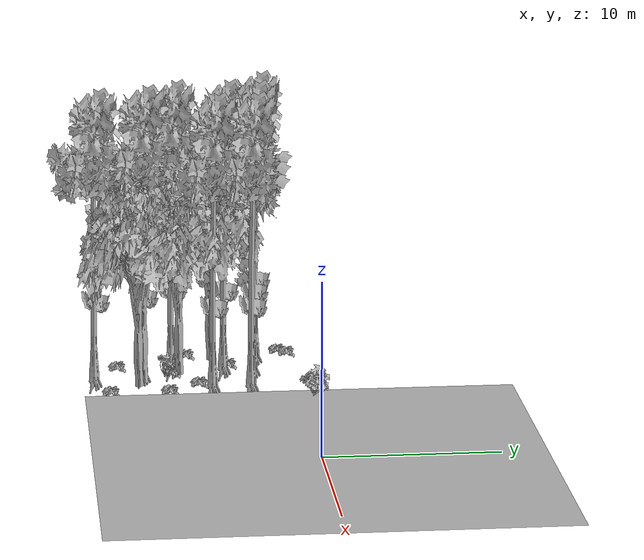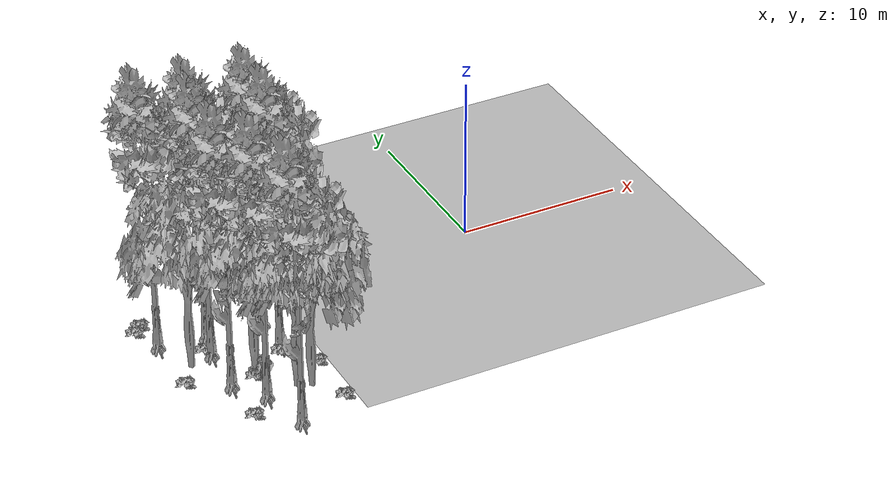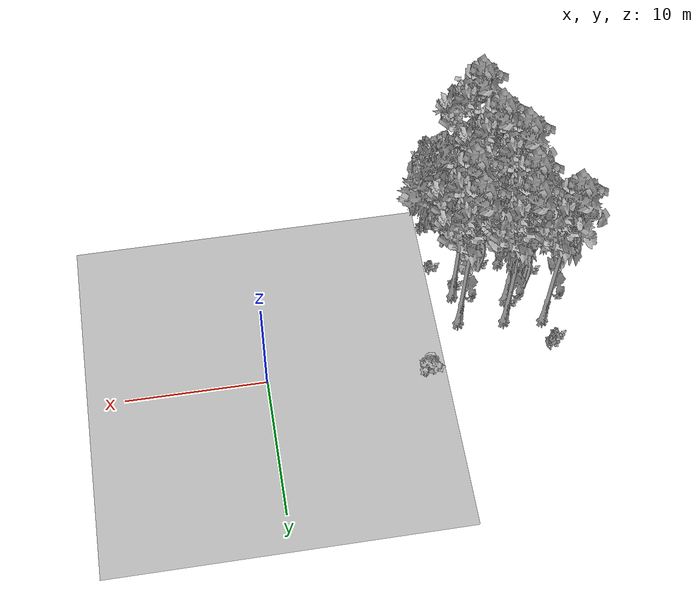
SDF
<sdf version="1.7">
 <world name="default">
  <model name="ground_plane">
   <static>1</static>
   <link name="link">
    <collision name="collision">
     <pose>-50 0 0 0 -0 0</pose>
     <geometry><plane><normal>0 0 1</normal><size>80 80</size></plane></geometry>
     <surface><contact><ode><min_depth>0.01</min_depth><max_vel>0</max_vel></ode></contact></surface>
    </collision>
    <visual name="grass">
     <cast_shadows>0</cast_shadows>
     <geometry>
      <mesh>
       <scale>0.46714285714285714 0.46714285714285714 0.1</scale>
       <uri>file://grass_plane/meshes/grass_plane.dae</uri>
      </mesh>
     </geometry>
    </visual>
   </link>
  </model>
  <model name="Tree 1">
   <static>1</static>
   <pose>-14.268420945148922 -5.010399066711486 0 1.57079 -0 0</pose>
   <link name="link">
    <collision name="collision">
     <geometry><mesh><scale>3.5 5 3.5</scale><uri>model://tree_9/meshes/tree_9.obj</uri></mesh></geometry>
    </collision>
    <visual name="visual">
     <geometry><mesh><scale>3.5 5 3.5</scale><uri>model://tree_9/meshes/tree_9.obj</uri></mesh></geometry>
    </visual>
   </link>
  </model>
  <model name="Tree 3">
   <static>1</static>
   <pose>-15.185637563876192 -9.049775119217855 0 1.57079 -0 0</pose>
   <link name="link">
    <collision name="collision">
     <geometry><mesh><scale>3.5 5 3.5</scale><uri>model://tree_2/meshes/tree_2.obj</uri></mesh></geometry>
    </collision>
    <visual name="visual">
     <geometry><mesh><scale>3.5 5 3.5</scale><uri>model://tree_2/meshes/tree_2.obj</uri></mesh></geometry>
    </visual>
   </link>
  </model>
  <model name="Tree 49">
   <static>1</static>
   <pose>-14.444090722086116 -9.37001705787462 0 1.57079 -0 0</pose>
   <link name="link">
    <collision name="collision">
     <geometry><mesh><scale>3.5 5 3.5</scale><uri>model://tree_2/meshes/tree_2.obj</uri></mesh></geometry>
    </collision>
    <visual name="visual">
     <geometry><mesh><scale>3.5 5 3.5</scale><uri>model://tree_2/meshes/tree_2.obj</uri></mesh></geometry>
    </visual>
   </link>
  </model>
  <model name="Tree 72">
   <static>1</static>
   <pose>-16.677209155015053 -6.855299618542155 0 1.57079 -0 0</pose>
   <link name="link">
    <collision name="collision">
     <geometry><mesh><scale>3.5 5 3.5</scale><uri>model://tree_2/meshes/tree_2.obj</uri></mesh></geometry>
    </collision>
    <visual name="visual">
     <geometry><mesh><scale>3.5 5 3.5</scale><uri>model://tree_2/meshes/tree_2.obj</uri></mesh></geometry>
    </visual>
   </link>
  </model>
  <model name="Tree 396">
   <static>1</static>
   <pose>-18.0080487579403 -4.1199985908794545 0 1.57079 -0 0</pose>
   <link name="link">
    <collision name="collision">
     <geometry><mesh><scale>3.5 5 3.5</scale><uri>model://tree_9/meshes/tree_9.obj</uri></mesh></geometry>
    </collision>
    <visual name="visual">
     <geometry><mesh><scale>3.5 5 3.5</scale><uri>model://tree_9/meshes/tree_9.obj</uri></mesh></geometry>
    </visual>
   </link>
  </model>
  <model name="Tree 417">
   <static>1</static>
   <pose>-16.88983637036467 -9.007692633671809 0 1.57079 -0 0</pose>
   <link name="link">
    <collision name="collision">
     <geometry><mesh><scale>3.5 5 3.5</scale><uri>model://tree_9/meshes/tree_9.obj</uri></mesh></geometry>
    </collision>
    <visual name="visual">
     <geometry><mesh><scale>3.5 5 3.5</scale><uri>model://tree_9/meshes/tree_9.obj</uri></mesh></geometry>
    </visual>
   </link>
  </model>
  <model name="Tree 518">
   <static>1</static>
   <pose>-14.27069926521752 -2.7329768493140776 0 1.57079 -0 0</pose>
   <link name="link">
    <collision name="collision">
     <geometry><mesh><scale>3.5 5 3.5</scale><uri>model://tree_9/meshes/tree_9.obj</uri></mesh></geometry>
    </collision>
    <visual name="visual">
     <geometry><mesh><scale>3.5 5 3.5</scale><uri>model://tree_9/meshes/tree_9.obj</uri></mesh></geometry>
    </visual>
   </link>
  </model>
  <model name="Tree 522">
   <static>1</static>
   <pose>-20.326247522328813 -2.0359272576360254 0 1.57079 -0 0</pose>
   <link name="link">
    <collision name="collision">
     <geometry><mesh><scale>3.5 5 3.5</scale><uri>model://tree_9/meshes/tree_9.obj</uri></mesh></geometry>
    </collision>
    <visual name="visual">
     <geometry><mesh><scale>3.5 5 3.5</scale><uri>model://tree_9/meshes/tree_9.obj</uri></mesh></geometry>
    </visual>
   </link>
  </model>
  <model name="Tree 543">
   <static>1</static>
   <pose>-19.579495202905438 -4.8119461704391995 0 1.57079 -0 0</pose>
   <link name="link">
    <collision name="collision">
     <geometry><mesh><scale>3.5 5 3.5</scale><uri>model://tree_2/meshes/tree_2.obj</uri></mesh></geometry>
    </collision>
    <visual name="visual">
     <geometry><mesh><scale>3.5 5 3.5</scale><uri>model://tree_2/meshes/tree_2.obj</uri></mesh></geometry>
    </visual>
   </link>
  </model>
  <model name="Tree 558">
   <static>1</static>
   <pose>-16.172193359262216 -11.927449991987125 0 1.57079 -0 0</pose>
   <link name="link">
    <collision name="collision">
     <geometry><mesh><scale>3.5 5 3.5</scale><uri>model://tree_9/meshes/tree_9.obj</uri></mesh></geometry>
    </collision>
    <visual name="visual">
     <geometry><mesh><scale>3.5 5 3.5</scale><uri>model://tree_9/meshes/tree_9.obj</uri></mesh></geometry>
    </visual>
   </link>
  </model>
  <model name="Tree 578">
   <static>1</static>
   <pose>-18.191517368507903 -7.249919098094665 0 1.57079 -0 0</pose>
   <link name="link">
    <collision name="collision">
     <geometry><mesh><scale>3.5 5 3.5</scale><uri>model://tree_9/meshes/tree_9.obj</uri></mesh></geometry>
    </collision>
    <visual name="visual">
     <geometry><mesh><scale>3.5 5 3.5</scale><uri>model://tree_9/meshes/tree_9.obj</uri></mesh></geometry>
    </visual>
   </link>
  </model>
  <model name="Tree 614">
   <static>1</static>
   <pose>-17.56637057550029 -2.371759540494068 0 1.57079 -0 0</pose>
   <link name="link">
    <collision name="collision">
     <geometry><mesh><scale>3.5 5 3.5</scale><uri>model://tree_9/meshes/tree_9.obj</uri></mesh></geometry>
    </collision>
    <visual name="visual">
     <geometry><mesh><scale>3.5 5 3.5</scale><uri>model://tree_9/meshes/tree_9.obj</uri></mesh></geometry>
    </visual>
   </link>
  </model>
  <model name="Bush 187">
   <static>1</static>
   <pose>-13.194455139986992 -7.6143491781825645 0 1.57079 -0 0</pose>
   <link name="link">
    <collision name="collision">
     <geometry><mesh><scale>2 2 2</scale><uri>model://bush_2/meshes/bush_2.obj</uri></mesh></geometry>
     <surface><contact><collide_without_contact>false</collide_without_contact></contact></surface>
    </collision>
    <visual name="visual">
     <geometry><mesh><scale>2 2 2</scale><uri>model://bush_2/meshes/bush_2.obj</uri></mesh></geometry>
    </visual>
   </link>
  </model>
  <model name="Bush 257">
   <static>1</static>
   <pose>-18.287650795860248 -10.506203330436588 0 1.57079 -0 0</pose>
   <link name="link">
    <collision name="collision">
     <geometry><mesh><scale>2 2 2</scale><uri>model://bush_2/meshes/bush_2.obj</uri></mesh></geometry>
     <surface><contact><collide_without_contact>false</collide_without_contact></contact></surface>
    </collision>
    <visual name="visual">
     <geometry><mesh><scale>2 2 2</scale><uri>model://bush_2/meshes/bush_2.obj</uri></mesh></geometry>
    </visual>
   </link>
  </model>
  <model name="Bush 315">
   <static>1</static>
   <pose>-16.507536464240985 -7.638157019108917 0 1.57079 -0 0</pose>
   <link name="link">
    <collision name="collision">
     <geometry><mesh><scale>2 2 2</scale><uri>model://bush_4/meshes/bush_4.obj</uri></mesh></geometry>
     <surface><contact><collide_without_contact>false</collide_without_contact></contact></surface>
    </collision>
    <visual name="visual">
     <geometry><mesh><scale>2 2 2</scale><uri>model://bush_4/meshes/bush_4.obj</uri></mesh></geometry>
    </visual>
   </link>
  </model>
  <model name="Bush 342">
   <static>1</static>
   <pose>-14.612381445301402 -5.806014649960993 0 1.57079 -0 0</pose>
   <link name="link">
    <collision name="collision">
     <geometry><mesh><scale>2 2 2</scale><uri>model://bush_2/meshes/bush_2.obj</uri></mesh></geometry>
     <surface><contact><collide_without_contact>false</collide_without_contact></contact></surface>
    </collision>
    <visual name="visual">
     <geometry><mesh><scale>2 2 2</scale><uri>model://bush_2/meshes/bush_2.obj</uri></mesh></geometry>
    </visual>
   </link>
  </model>
  <model name="Bush 353">
   <static>1</static>
   <pose>-11.492187234279616 0.7125211329506982 0 1.57079 -0 0</pose>
   <link name="link">
    <collision name="collision">
     <geometry><mesh><scale>2 2 2</scale><uri>model://bush_1/meshes/bush_1.obj</uri></mesh></geometry>
     <surface><contact><collide_without_contact>false</collide_without_contact></contact></surface>
    </collision>
    <visual name="visual">
     <geometry><mesh><scale>2 2 2</scale><uri>model://bush_1/meshes/bush_1.obj</uri></mesh></geometry>
    </visual>
   </link>
  </model>
  <model name="Bush 413">
   <static>1</static>
   <pose>-21.107128461750747 -0.6234500514339771 0 1.57079 -0 0</pose>
   <link name="link">
    <collision name="collision">
     <geometry><mesh><scale>2 2 2</scale><uri>model://bush_2/meshes/bush_2.obj</uri></mesh></geometry>
     <surface><contact><collide_without_contact>false</collide_without_contact></contact></surface>
    </collision>
    <visual name="visual">
     <geometry><mesh><scale>2 2 2</scale><uri>model://bush_2/meshes/bush_2.obj</uri></mesh></geometry>
    </visual>
   </link>
  </model>
  <model name="Bush 426">
   <static>1</static>
   <pose>-16.8178950752465 -7.3003444655944065 0 1.57079 -0 0</pose>
   <link name="link">
    <collision name="collision">
     <geometry><mesh><scale>2 2 2</scale><uri>model://bush_2/meshes/bush_2.obj</uri></mesh></geometry>
     <surface><contact><collide_without_contact>false</collide_without_contact></contact></surface>
    </collision>
    <visual name="visual">
     <geometry><mesh><scale>2 2 2</scale><uri>model://bush_2/meshes/bush_2.obj</uri></mesh></geometry>
    </visual>
   </link>
  </model>
  <model name="Bush 433">
   <static>1</static>
   <pose>-13.197439856744111 -11.075981602938498 0 1.57079 -0 0</pose>
   <link name="link">
    <collision name="collision">
     <geometry><mesh><scale>2 2 2</scale><uri>model://bush_2/meshes/bush_2.obj</uri></mesh></geometry>
     <surface><contact><collide_without_contact>false</collide_without_contact></contact></surface>
    </collision>
    <visual name="visual">
     <geometry><mesh><scale>2 2 2</scale><uri>model://bush_2/meshes/bush_2.obj</uri></mesh></geometry>
    </visual>
   </link>
  </model>
  <model name="Bush 453">
   <static>1</static>
   <pose>-20.606806133922667 -0.10477719175791833 0 1.57079 -0 0</pose>
   <link name="link">
    <collision name="collision">
     <geometry><mesh><scale>2 2 2</scale><uri>model://bush_2/meshes/bush_2.obj</uri></mesh></geometry>
     <surface><contact><collide_without_contact>false</collide_without_contact></contact></surface>
    </collision>
    <visual name="visual">
     <geometry><mesh><scale>2 2 2</scale><uri>model://bush_2/meshes/bush_2.obj</uri></mesh></geometry>
    </visual>
   </link>
  </model>
  <model name="Bush 497">
   <static>1</static>
   <pose>-18.315097239581817 -3.830023940748859 0 1.57079 -0 0</pose>
   <link name="link">
    <collision name="collision">
     <geometry><mesh><scale>2 2 2</scale><uri>model://bush_2/meshes/bush_2.obj</uri></mesh></geometry>
     <surface><contact><collide_without_contact>false</collide_without_contact></contact></surface>
    </collision>
    <visual name="visual">
     <geometry><mesh><scale>2 2 2</scale><uri>model://bush_2/meshes/bush_2.obj</uri></mesh></geometry>
    </visual>
   </link>
  </model>
  <model name="Bush 535">
   <static>1</static>
   <pose>-20.47594208301778 -6.242152720713612 0 1.57079 -0 0</pose>
   <link name="link">
    <collision name="collision">
     <geometry><mesh><scale>2 2 2</scale><uri>model://bush_2/meshes/bush_2.obj</uri></mesh></geometry>
     <surface><contact><collide_without_contact>false</collide_without_contact></contact></surface>
    </collision>
    <visual name="visual">
     <geometry><mesh><scale>2 2 2</scale><uri>model://bush_2/meshes/bush_2.obj</uri></mesh></geometry>
    </visual>
   </link>
  </model>
 </world>
</sdf>
